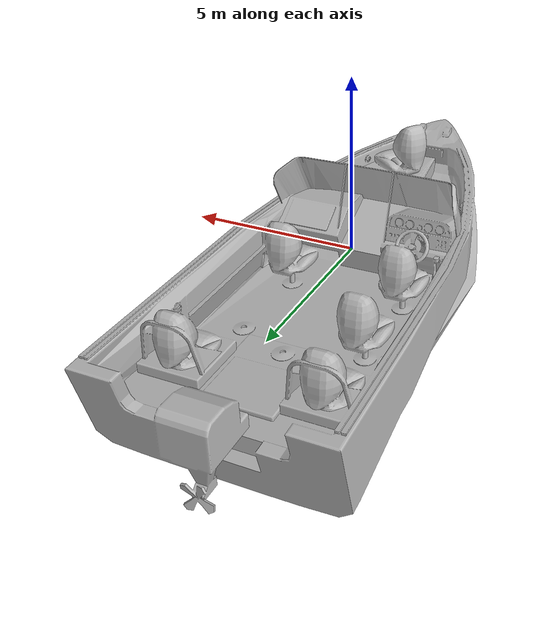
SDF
<?xml version="1.0" ?>
<sdf version="1.6">
  <model name="unity_boat">
    <pose>0 0 0 0 0 0</pose>
    <static>false</static>

    <link name="link">

      <visual name="visual">
        <pose>0 0 0 0 0 0</pose>
        <geometry>
          <mesh>
            <uri>model://unity_boat/meshes/boat.dae</uri>
          </mesh>
        </geometry>
      </visual>

      <collision name="collision">
        <pose>0 0 0.075 0 0 0</pose>
        <geometry>
          <box>
            <size>7.0 17.0 4.62</size>
          </box>
        </geometry>
      </collision>

      <inertial>
        <pose>0 0 -0.8 0 0 0</pose>
        <mass>700</mass>
        <inertia>
          <ixx>18103</ixx>
          <iyy>4103</iyy>
          <izz>19717</izz>
          <ixy>0</ixy>
          <ixz>0</ixz>
          <iyz>0</iyz>
        </inertia>
      </inertial>

      <!-- IMU -->
      <sensor name="imu_wamv_sensor" type="imu">
        <pose>0 0 0.2 0 0 0</pose>
        <always_on>1</always_on>
        <update_rate>50</update_rate>
        <imu>
          <angular_velocity>
            <x><noise type="gaussian"><mean>0</mean><stddev>2e-4</stddev></noise></x>
            <y><noise type="gaussian"><mean>0</mean><stddev>2e-4</stddev></noise></y>
            <z><noise type="gaussian"><mean>0</mean><stddev>2e-4</stddev></noise></z>
          </angular_velocity>
          <linear_acceleration>
            <x><noise type="gaussian"><mean>0</mean><stddev>1.7e-2</stddev></noise></x>
            <y><noise type="gaussian"><mean>0</mean><stddev>1.7e-2</stddev></noise></y>
            <z><noise type="gaussian"><mean>0</mean><stddev>1.7e-2</stddev></noise></z>
          </linear_acceleration>
        </imu>
      </sensor>

      <!-- GPS -->
      <sensor name="gps_wamv_sensor" type="navsat">
        <pose>0 0 1.0 0 0 0</pose>
        <always_on>1</always_on>
        <update_rate>10</update_rate>
        <navsat>
          <position_sensing>
            <horizontal><noise type="gaussian"><mean>0</mean><stddev>0.5</stddev></noise></horizontal>
            <vertical><noise type="gaussian"><mean>0</mean><stddev>0.5</stddev></noise></vertical>
          </position_sensing>
        </navsat>
      </sensor>

      <!-- Front left camera -->
      <sensor name="front_left_camera_sensor" type="camera">
        <pose>2.0 0.5 1.5 0 0 0</pose>
        <always_on>1</always_on>
        <update_rate>30</update_rate>
        <camera>
          <horizontal_fov>1.3962634</horizontal_fov>
          <image><width>640</width><height>480</height><format>R8G8B8</format></image>
          <clip><near>0.1</near><far>300</far></clip>
        </camera>
      </sensor>

      <!-- Front right camera -->
      <sensor name="front_right_camera_sensor" type="camera">
        <pose>2.0 -0.5 1.5 0 0 0</pose>
        <always_on>1</always_on>
        <update_rate>30</update_rate>
        <camera>
          <horizontal_fov>1.3962634</horizontal_fov>
          <image><width>640</width><height>480</height><format>R8G8B8</format></image>
          <clip><near>0.1</near><far>300</far></clip>
        </camera>
      </sensor>

      <!-- Middle right camera -->
      <sensor name="middle_right_camera_sensor" type="camera">
        <pose>0.5 -1.0 1.5 0 0 -0.3</pose>
        <always_on>1</always_on>
        <update_rate>30</update_rate>
        <camera>
          <horizontal_fov>1.3962634</horizontal_fov>
          <image><width>640</width><height>480</height><format>R8G8B8</format></image>
          <clip><near>0.1</near><far>300</far></clip>
        </camera>
      </sensor>

      <!-- Lidar -->
      <sensor name="lidar_wamv_sensor" type="gpu_lidar">
        <pose>0 0 2.5 0 0 0</pose>
        <always_on>1</always_on>
        <update_rate>10</update_rate>
        <lidar>
          <scan>
            <horizontal>
              <samples>640</samples>
              <resolution>1</resolution>
              <min_angle>-3.14159</min_angle>
              <max_angle>3.14159</max_angle>
            </horizontal>
            <vertical>
              <samples>1</samples><resolution>1</resolution>
              <min_angle>0</min_angle><max_angle>0</max_angle>
            </vertical>
          </scan>
          <range><min>0.5</min><max>100</max><resolution>0.01</resolution></range>
          <noise><type>gaussian</type><mean>0</mean><stddev>0.01</stddev></noise>
        </lidar>
      </sensor>

    </link>

    <plugin name="vrx::PolyhedraBuoyancyDrag"
            filename="libPolyhedraBuoyancyDrag.so">
      <fluid_density>1000</fluid_density>
      <fluid_level>0.0</fluid_level>
      <linear_drag>50.0</linear_drag>
      <angular_drag>5.0</angular_drag>
      <buoyancy name="hull">
        <link_name>link</link_name>
        <pose>0 0 -1.5 0 0 0</pose>
        <geometry>
          <box>
            <size>2.5 6.0 0.8</size>
          </box>
        </geometry>
      </buoyancy>
      <wavefield>
        <topic>/vrx/wavefield/parameters</topic>
      </wavefield>
    </plugin>

  </model>
</sdf>
